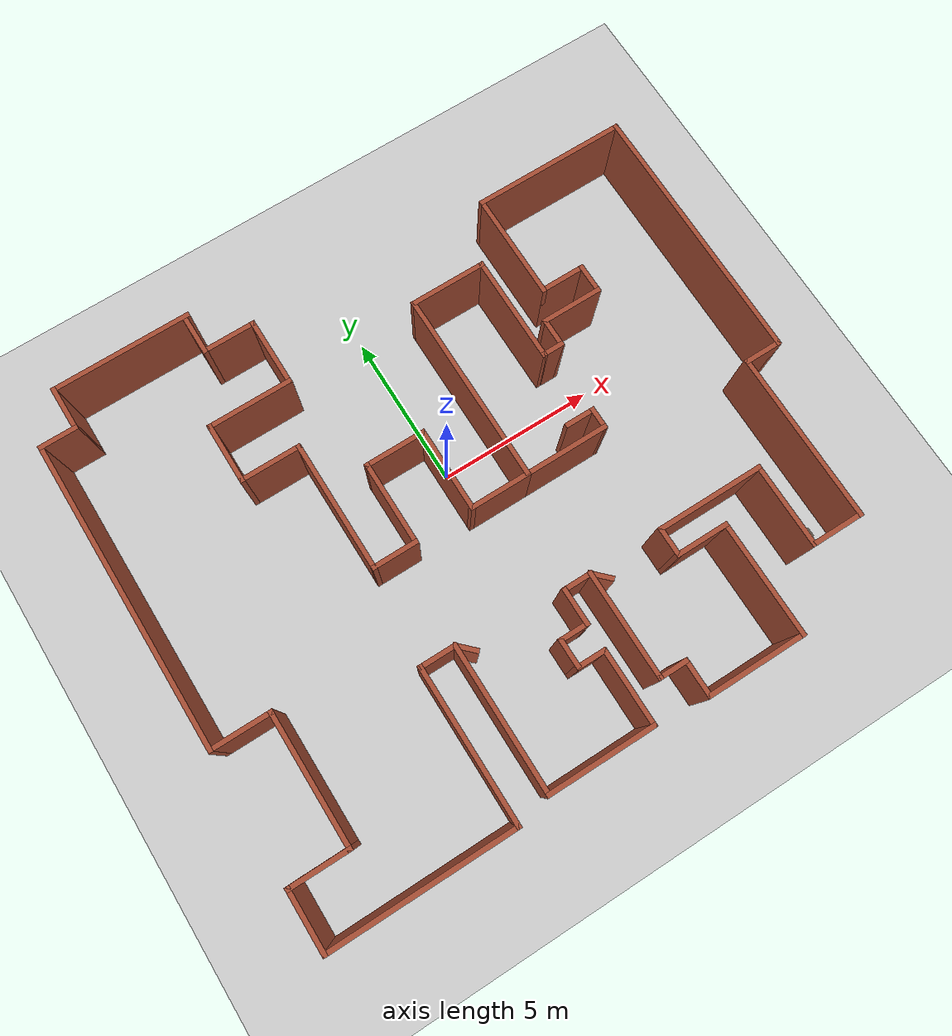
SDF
<sdf version="1.6">
 <world name="default">
  <model name="ground_plane">
   <static>1</static>
   <link name="link">
    <collision name="collision">
     <geometry><plane><normal>0 0 1</normal><size>100 100</size></plane></geometry>
     <surface>
      <contact><collide_bitmask>65535</collide_bitmask></contact>
      <friction><ode><mu>100</mu><mu2>50</mu2></ode></friction>
     </surface>
    </collision>
    <visual name="visual">
     <cast_shadows>0</cast_shadows>
     <geometry><plane><normal>0 0 1</normal><size>100 100</size></plane></geometry>
     <material>
      <script><uri>file://media/materials/scripts/gazebo.material</uri><name>Gazebo/Grey</name></script>
     </material>
    </visual>
   </link>
  </model>
  <model name="map_104">
   <pose>0.137097 -0.979717 0 0 -0 0</pose>
   <link name="Wall_14">
    <collision name="Wall_14_Collision">
     <geometry><box><size>1.5 0.15 2.5</size></box></geometry>
     <pose>0 0 1.25 0 -0 0</pose>
    </collision>
    <visual name="Wall_14_Visual">
     <pose>0 0 1.25 0 -0 0</pose>
     <geometry><box><size>1.5 0.15 2.5</size></box></geometry>
     <material>
      <script><uri>file://media/materials/scripts/gazebo.material</uri><name>Gazebo/Bricks</name></script>
      <ambient>1 1 1 1</ambient>
     </material>
     <meta><layer>0</layer></meta>
    </visual>
    <pose>-8.675 7.9 0 0 -0 -1.5708</pose>
   </link>
   <link name="Wall_15">
    <collision name="Wall_15_Collision">
     <geometry><box><size>1.25 0.15 2.5</size></box></geometry>
     <pose>0 0 1.25 0 -0 0</pose>
    </collision>
    <visual name="Wall_15_Visual">
     <pose>0 0 1.25 0 -0 0</pose>
     <geometry><box><size>1.25 0.15 2.5</size></box></geometry>
     <material>
      <script><uri>file://media/materials/scripts/gazebo.material</uri><name>Gazebo/Bricks</name></script>
      <ambient>1 1 1 1</ambient>
     </material>
     <meta><layer>0</layer></meta>
    </visual>
    <pose>-9.225 7.225 0 0 -0 3.14159</pose>
   </link>
   <link name="Wall_17">
    <collision name="Wall_17_Collision">
     <geometry><box><size>10 0.15 2.5</size></box></geometry>
     <pose>0 0 1.25 0 -0 0</pose>
    </collision>
    <visual name="Wall_17_Visual">
     <pose>0 0 1.25 0 -0 0</pose>
     <geometry><box><size>10 0.15 2.5</size></box></geometry>
     <material>
      <script><uri>file://media/materials/scripts/gazebo.material</uri><name>Gazebo/Bricks</name></script>
      <ambient>1 1 1 1</ambient>
     </material>
     <meta><layer>0</layer></meta>
    </visual>
    <pose>-9.775 2.3 0 0 -0 -1.5708</pose>
   </link>
   <link name="Wall_18">
    <collision name="Wall_18_Collision">
     <geometry><box><size>2 0.15 2.5</size></box></geometry>
     <pose>0 0 1.25 0 -0 0</pose>
    </collision>
    <visual name="Wall_18_Visual">
     <pose>0 0 1.25 0 -0 0</pose>
     <geometry><box><size>2 0.15 2.5</size></box></geometry>
     <material>
      <script><uri>file://media/materials/scripts/gazebo.material</uri><name>Gazebo/Bricks</name></script>
      <ambient>1 1 1 1</ambient>
     </material>
     <meta><layer>0</layer></meta>
    </visual>
    <pose>-8.85 -2.625 0 0 -0 0</pose>
   </link>
   <link name="Wall_19">
    <collision name="Wall_19_Collision">
     <geometry><box><size>4.25 0.15 2.5</size></box></geometry>
     <pose>0 0 1.25 0 -0 0</pose>
    </collision>
    <visual name="Wall_19_Visual">
     <pose>0 0 1.25 0 -0 0</pose>
     <geometry><box><size>4.25 0.15 2.5</size></box></geometry>
     <material>
      <script><uri>file://media/materials/scripts/gazebo.material</uri><name>Gazebo/Bricks</name></script>
      <ambient>1 1 1 1</ambient>
     </material>
     <meta><layer>0</layer></meta>
    </visual>
    <pose>-7.925 -4.675 0 0 -0 -1.5708</pose>
   </link>
   <link name="Wall_20">
    <collision name="Wall_20_Collision">
     <geometry><box><size>2 0.15 2.5</size></box></geometry>
     <pose>0 0 1.25 0 -0 0</pose>
    </collision>
    <visual name="Wall_20_Visual">
     <pose>0 0 1.25 0 -0 0</pose>
     <geometry><box><size>2 0.15 2.5</size></box></geometry>
     <material>
      <script><uri>file://media/materials/scripts/gazebo.material</uri><name>Gazebo/Bricks</name></script>
      <ambient>1 1 1 1</ambient>
     </material>
     <meta><layer>0</layer></meta>
    </visual>
    <pose>-8.85 -6.725 0 0 -0 3.14159</pose>
   </link>
   <link name="Wall_21">
    <collision name="Wall_21_Collision">
     <geometry><box><size>2 0.15 2.5</size></box></geometry>
     <pose>0 0 1.25 0 -0 0</pose>
    </collision>
    <visual name="Wall_21_Visual">
     <pose>0 0 1.25 0 -0 0</pose>
     <geometry><box><size>2 0.15 2.5</size></box></geometry>
     <material>
      <script><uri>file://media/materials/scripts/gazebo.material</uri><name>Gazebo/Bricks</name></script>
      <ambient>1 1 1 1</ambient>
     </material>
     <meta><layer>0</layer></meta>
    </visual>
    <pose>-9.775 -7.65 0 0 -0 -1.5708</pose>
   </link>
   <link name="Wall_22">
    <collision name="Wall_22_Collision">
     <geometry><box><size>6 0.15 2.5</size></box></geometry>
     <pose>0 0 1.25 0 -0 0</pose>
    </collision>
    <visual name="Wall_22_Visual">
     <pose>0 0 1.25 0 -0 0</pose>
     <geometry><box><size>6 0.15 2.5</size></box></geometry>
     <material>
      <script><uri>file://media/materials/scripts/gazebo.material</uri><name>Gazebo/Bricks</name></script>
      <ambient>1 1 1 1</ambient>
     </material>
     <meta><layer>0</layer></meta>
    </visual>
    <pose>-6.85 -8.575 0 0 -0 0</pose>
   </link>
   <link name="Wall_23">
    <collision name="Wall_23_Collision">
     <geometry><box><size>5 0.15 2.5</size></box></geometry>
     <pose>0 0 1.25 0 -0 0</pose>
    </collision>
    <visual name="Wall_23_Visual">
     <pose>0 0 1.25 0 -0 0</pose>
     <geometry><box><size>5 0.15 2.5</size></box></geometry>
     <material>
      <script><uri>file://media/materials/scripts/gazebo.material</uri><name>Gazebo/Bricks</name></script>
      <ambient>1 1 1 1</ambient>
     </material>
     <meta><layer>0</layer></meta>
    </visual>
    <pose>-3.925 -6.15 0 0 -0 1.5708</pose>
   </link>
   <link name="Wall_24">
    <collision name="Wall_24_Collision">
     <geometry><box><size>1.25 0.15 2.5</size></box></geometry>
     <pose>0 0 1.25 0 -0 0</pose>
    </collision>
    <visual name="Wall_24_Visual">
     <pose>0 0 1.25 0 -0 0</pose>
     <geometry><box><size>1.25 0.15 2.5</size></box></geometry>
     <material>
      <script><uri>file://media/materials/scripts/gazebo.material</uri><name>Gazebo/Bricks</name></script>
      <ambient>1 1 1 1</ambient>
     </material>
     <meta><layer>0</layer></meta>
    </visual>
    <pose>-3.375 -3.725 0 0 -0 0</pose>
   </link>
   <link name="Wall_25">
    <collision name="Wall_25_Collision">
     <geometry><box><size>4.75 0.15 2.5</size></box></geometry>
     <pose>0 0 1.25 0 -0 0</pose>
    </collision>
    <visual name="Wall_25_Visual">
     <pose>0 0 1.25 0 -0 0</pose>
     <geometry><box><size>4.75 0.15 2.5</size></box></geometry>
     <material>
      <script><uri>file://media/materials/scripts/gazebo.material</uri><name>Gazebo/Bricks</name></script>
      <ambient>1 1 1 1</ambient>
     </material>
     <meta><layer>0</layer></meta>
    </visual>
    <pose>-2.825 -6.025 0 0 -0 -1.5708</pose>
   </link>
   <link name="Wall_26">
    <collision name="Wall_26_Collision">
     <geometry><box><size>3.5 0.15 2.5</size></box></geometry>
     <pose>0 0 1.25 0 -0 0</pose>
    </collision>
    <visual name="Wall_26_Visual">
     <pose>0 0 1.25 0 -0 0</pose>
     <geometry><box><size>3.5 0.15 2.5</size></box></geometry>
     <material>
      <script><uri>file://media/materials/scripts/gazebo.material</uri><name>Gazebo/Bricks</name></script>
      <ambient>1 1 1 1</ambient>
     </material>
     <meta><layer>0</layer></meta>
    </visual>
    <pose>-1.15 -8.325 0 0 -0 0</pose>
   </link>
   <link name="Wall_27">
    <collision name="Wall_27_Collision">
     <geometry><box><size>2.5 0.15 2.5</size></box></geometry>
     <pose>0 0 1.25 0 -0 0</pose>
    </collision>
    <visual name="Wall_27_Visual">
     <pose>0 0 1.25 0 -0 0</pose>
     <geometry><box><size>2.5 0.15 2.5</size></box></geometry>
     <material>
      <script><uri>file://media/materials/scripts/gazebo.material</uri><name>Gazebo/Bricks</name></script>
      <ambient>1 1 1 1</ambient>
     </material>
     <meta><layer>0</layer></meta>
    </visual>
    <pose>0.525 -7.15 0 0 -0 1.5708</pose>
   </link>
   <link name="Wall_28">
    <collision name="Wall_28_Collision">
     <geometry><box><size>1 0.15 2.5</size></box></geometry>
     <pose>0 0 1.25 0 -0 0</pose>
    </collision>
    <visual name="Wall_28_Visual">
     <pose>0 0 1.25 0 -0 0</pose>
     <geometry><box><size>1 0.15 2.5</size></box></geometry>
     <material>
      <script><uri>file://media/materials/scripts/gazebo.material</uri><name>Gazebo/Bricks</name></script>
      <ambient>1 1 1 1</ambient>
     </material>
     <meta><layer>0</layer></meta>
    </visual>
    <pose>0.1 -5.975 0 0 -0 3.14159</pose>
   </link>
   <link name="Wall_29">
    <collision name="Wall_29_Collision">
     <geometry><box><size>1 0.15 2.5</size></box></geometry>
     <pose>0 0 1.25 0 -0 0</pose>
    </collision>
    <visual name="Wall_29_Visual">
     <pose>0 0 1.25 0 -0 0</pose>
     <geometry><box><size>1 0.15 2.5</size></box></geometry>
     <material>
      <script><uri>file://media/materials/scripts/gazebo.material</uri><name>Gazebo/Bricks</name></script>
      <ambient>1 1 1 1</ambient>
     </material>
     <meta><layer>0</layer></meta>
    </visual>
    <pose>-0.325 -5.55 0 0 -0 1.5708</pose>
   </link>
   <link name="Wall_30">
    <collision name="Wall_30_Collision">
     <geometry><box><size>1 0.15 2.5</size></box></geometry>
     <pose>0 0 1.25 0 -0 0</pose>
    </collision>
    <visual name="Wall_30_Visual">
     <pose>0 0 1.25 0 -0 0</pose>
     <geometry><box><size>1 0.15 2.5</size></box></geometry>
     <material>
      <script><uri>file://media/materials/scripts/gazebo.material</uri><name>Gazebo/Bricks</name></script>
      <ambient>1 1 1 1</ambient>
     </material>
     <meta><layer>0</layer></meta>
    </visual>
    <pose>0.1 -5.125 0 0 -0 0</pose>
   </link>
   <link name="Wall_31">
    <collision name="Wall_31_Collision">
     <geometry><box><size>1.25 0.15 2.5</size></box></geometry>
     <pose>0 0 1.25 0 -0 0</pose>
    </collision>
    <visual name="Wall_31_Visual">
     <pose>0 0 1.25 0 -0 0</pose>
     <geometry><box><size>1.25 0.15 2.5</size></box></geometry>
     <material>
      <script><uri>file://media/materials/scripts/gazebo.material</uri><name>Gazebo/Bricks</name></script>
      <ambient>1 1 1 1</ambient>
     </material>
     <meta><layer>0</layer></meta>
    </visual>
    <pose>0.525 -4.575 0 0 -0 1.5708</pose>
   </link>
   <link name="Wall_32">
    <collision name="Wall_32_Collision">
     <geometry><box><size>1 0.15 2.5</size></box></geometry>
     <pose>0 0 1.25 0 -0 0</pose>
    </collision>
    <visual name="Wall_32_Visual">
     <pose>0 0 1.25 0 -0 0</pose>
     <geometry><box><size>1 0.15 2.5</size></box></geometry>
     <material>
      <script><uri>file://media/materials/scripts/gazebo.material</uri><name>Gazebo/Bricks</name></script>
      <ambient>1 1 1 1</ambient>
     </material>
     <meta><layer>0</layer></meta>
    </visual>
    <pose>0.95 -4.025 0 0 -0 0</pose>
   </link>
   <link name="Wall_33">
    <collision name="Wall_33_Collision">
     <geometry><box><size>3.5 0.15 2.5</size></box></geometry>
     <pose>0 0 1.25 0 -0 0</pose>
    </collision>
    <visual name="Wall_33_Visual">
     <pose>0 0 1.25 0 -0 0</pose>
     <geometry><box><size>3.5 0.15 2.5</size></box></geometry>
     <material>
      <script><uri>file://media/materials/scripts/gazebo.material</uri><name>Gazebo/Bricks</name></script>
      <ambient>1 1 1 1</ambient>
     </material>
     <meta><layer>0</layer></meta>
    </visual>
    <pose>1.375 -5.7 0 0 -0 -1.5708</pose>
   </link>
   <link name="Wall_34">
    <collision name="Wall_34_Collision">
     <geometry><box><size>1 0.15 2.5</size></box></geometry>
     <pose>0 0 1.25 0 -0 0</pose>
    </collision>
    <visual name="Wall_34_Visual">
     <pose>0 0 1.25 0 -0 0</pose>
     <geometry><box><size>1 0.15 2.5</size></box></geometry>
     <material>
      <script><uri>file://media/materials/scripts/gazebo.material</uri><name>Gazebo/Bricks</name></script>
      <ambient>1 1 1 1</ambient>
     </material>
     <meta><layer>0</layer></meta>
    </visual>
    <pose>1.8 -7.375 0 0 -0 0</pose>
   </link>
   <link name="Wall_35">
    <collision name="Wall_35_Collision">
     <geometry><box><size>1.25 0.15 2.5</size></box></geometry>
     <pose>0 0 1.25 0 -0 0</pose>
    </collision>
    <visual name="Wall_35_Visual">
     <pose>0 0 1.25 0 -0 0</pose>
     <geometry><box><size>1.25 0.15 2.5</size></box></geometry>
     <material>
      <script><uri>file://media/materials/scripts/gazebo.material</uri><name>Gazebo/Bricks</name></script>
      <ambient>1 1 1 1</ambient>
     </material>
     <meta><layer>0</layer></meta>
    </visual>
    <pose>2.225 -7.925 0 0 -0 -1.5708</pose>
   </link>
   <link name="Wall_36">
    <collision name="Wall_36_Collision">
     <geometry><box><size>3.25 0.15 2.5</size></box></geometry>
     <pose>0 0 1.25 0 -0 0</pose>
    </collision>
    <visual name="Wall_36_Visual">
     <pose>0 0 1.25 0 -0 0</pose>
     <geometry><box><size>3.25 0.15 2.5</size></box></geometry>
     <material>
      <script><uri>file://media/materials/scripts/gazebo.material</uri><name>Gazebo/Bricks</name></script>
      <ambient>1 1 1 1</ambient>
     </material>
     <meta><layer>0</layer></meta>
    </visual>
    <pose>3.775 -8.475 0 0 -0 0</pose>
   </link>
   <link name="Wall_37">
    <collision name="Wall_37_Collision">
     <geometry><box><size>3.75 0.15 2.5</size></box></geometry>
     <pose>0 0 1.25 0 -0 0</pose>
    </collision>
    <visual name="Wall_37_Visual">
     <pose>0 0 1.25 0 -0 0</pose>
     <geometry><box><size>3.75 0.15 2.5</size></box></geometry>
     <material>
      <script><uri>file://media/materials/scripts/gazebo.material</uri><name>Gazebo/Bricks</name></script>
      <ambient>1 1 1 1</ambient>
     </material>
     <meta><layer>0</layer></meta>
    </visual>
    <pose>5.325 -6.675 0 0 -0 1.5708</pose>
   </link>
   <link name="Wall_38">
    <collision name="Wall_38_Collision">
     <geometry><box><size>1.75 0.15 2.5</size></box></geometry>
     <pose>0 0 1.25 0 -0 0</pose>
    </collision>
    <visual name="Wall_38_Visual">
     <pose>0 0 1.25 0 -0 0</pose>
     <geometry><box><size>1.75 0.15 2.5</size></box></geometry>
     <material>
      <script><uri>file://media/materials/scripts/gazebo.material</uri><name>Gazebo/Bricks</name></script>
      <ambient>1 1 1 1</ambient>
     </material>
     <meta><layer>0</layer></meta>
    </visual>
    <pose>4.525 -4.875 0 0 -0 3.14159</pose>
   </link>
   <link name="Wall_39">
    <collision name="Wall_39_Collision">
     <geometry><box><size>1 0.15 2.5</size></box></geometry>
     <pose>0 0 1.25 0 -0 0</pose>
    </collision>
    <visual name="Wall_39_Visual">
     <pose>0 0 1.25 0 -0 0</pose>
     <geometry><box><size>1 0.15 2.5</size></box></geometry>
     <material>
      <script><uri>file://media/materials/scripts/gazebo.material</uri><name>Gazebo/Bricks</name></script>
      <ambient>1 1 1 1</ambient>
     </material>
     <meta><layer>0</layer></meta>
    </visual>
    <pose>3.725 -4.45 0 0 -0 1.5708</pose>
   </link>
   <link name="Wall_40">
    <collision name="Wall_40_Collision">
     <geometry><box><size>3.5 0.15 2.5</size></box></geometry>
     <pose>0 0 1.25 0 -0 0</pose>
    </collision>
    <visual name="Wall_40_Visual">
     <pose>0 0 1.25 0 -0 0</pose>
     <geometry><box><size>3.5 0.15 2.5</size></box></geometry>
     <material>
      <script><uri>file://media/materials/scripts/gazebo.material</uri><name>Gazebo/Bricks</name></script>
      <ambient>1 1 1 1</ambient>
     </material>
     <meta><layer>0</layer></meta>
    </visual>
    <pose>5.4 -4.025 0 0 -0 0</pose>
   </link>
   <link name="Wall_41">
    <collision name="Wall_41_Collision">
     <geometry><box><size>2.75 0.15 2.5</size></box></geometry>
     <pose>0 0 1.25 0 -0 0</pose>
    </collision>
    <visual name="Wall_41_Visual">
     <pose>0 0 1.25 0 -0 0</pose>
     <geometry><box><size>2.75 0.15 2.5</size></box></geometry>
     <material>
      <script><uri>file://media/materials/scripts/gazebo.material</uri><name>Gazebo/Bricks</name></script>
      <ambient>1 1 1 1</ambient>
     </material>
     <meta><layer>0</layer></meta>
    </visual>
    <pose>7.075 -5.325 0 0 -0 -1.5708</pose>
   </link>
   <link name="Wall_42">
    <collision name="Wall_42_Collision">
     <geometry><box><size>1.75 0.15 2.5</size></box></geometry>
     <pose>0 0 1.25 0 -0 0</pose>
    </collision>
    <visual name="Wall_42_Visual">
     <pose>0 0 1.25 0 -0 0</pose>
     <geometry><box><size>1.75 0.15 2.5</size></box></geometry>
     <material>
      <script><uri>file://media/materials/scripts/gazebo.material</uri><name>Gazebo/Bricks</name></script>
      <ambient>1 1 1 1</ambient>
     </material>
     <meta><layer>0</layer></meta>
    </visual>
    <pose>7.875 -6.625 0 0 -0 0</pose>
   </link>
   <link name="Wall_43">
    <collision name="Wall_43_Collision">
     <geometry><box><size>5.5 0.15 2.5</size></box></geometry>
     <pose>0 0 1.25 0 -0 0</pose>
    </collision>
    <visual name="Wall_43_Visual">
     <pose>0 0 1.25 0 -0 0</pose>
     <geometry><box><size>5.5 0.15 2.5</size></box></geometry>
     <material>
      <script><uri>file://media/materials/scripts/gazebo.material</uri><name>Gazebo/Bricks</name></script>
      <ambient>1 1 1 1</ambient>
     </material>
     <meta><layer>0</layer></meta>
    </visual>
    <pose>8.675 -3.95 0 0 -0 1.5708</pose>
   </link>
   <link name="Wall_45">
    <collision name="Wall_45_Collision">
     <geometry><box><size>1.25 0.15 2.5</size></box></geometry>
     <pose>0 0 1.25 0 -0 0</pose>
    </collision>
    <visual name="Wall_45_Visual">
     <pose>0 0 1.25 0 -0 0</pose>
     <geometry><box><size>1.25 0.15 2.5</size></box></geometry>
     <material>
      <script><uri>file://media/materials/scripts/gazebo.material</uri><name>Gazebo/Bricks</name></script>
      <ambient>1 1 1 1</ambient>
     </material>
     <meta><layer>0</layer></meta>
    </visual>
    <pose>9.225 -1.275 0 0 -0 0</pose>
   </link>
   <link name="Wall_47">
    <collision name="Wall_47_Collision">
     <geometry><box><size>8.5 0.15 2.5</size></box></geometry>
     <pose>0 0 1.25 0 -0 0</pose>
    </collision>
    <visual name="Wall_47_Visual">
     <pose>0 0 1.25 0 -0 0</pose>
     <geometry><box><size>8.5 0.15 2.5</size></box></geometry>
     <material>
      <script><uri>file://media/materials/scripts/gazebo.material</uri><name>Gazebo/Bricks</name></script>
      <ambient>1 1 1 1</ambient>
     </material>
     <meta><layer>0</layer></meta>
    </visual>
    <pose>9.775 2.9 0 0 -0 1.5708</pose>
   </link>
   <link name="Wall_48">
    <collision name="Wall_48_Collision">
     <geometry><box><size>5 0.15 2.5</size></box></geometry>
     <pose>0 0 1.25 0 -0 0</pose>
    </collision>
    <visual name="Wall_48_Visual">
     <pose>0 0 1.25 0 -0 0</pose>
     <geometry><box><size>5 0.15 2.5</size></box></geometry>
     <material>
      <script><uri>file://media/materials/scripts/gazebo.material</uri><name>Gazebo/Bricks</name></script>
      <ambient>1 1 1 1</ambient>
     </material>
     <meta><layer>0</layer></meta>
    </visual>
    <pose>7.35 7.075 0 0 -0 3.14159</pose>
   </link>
   <link name="Wall_49">
    <collision name="Wall_49_Collision">
     <geometry><box><size>3.5 0.15 2.5</size></box></geometry>
     <pose>0 0 1.25 0 -0 0</pose>
    </collision>
    <visual name="Wall_49_Visual">
     <pose>0 0 1.25 0 -0 0</pose>
     <geometry><box><size>3.5 0.15 2.5</size></box></geometry>
     <material>
      <script><uri>file://media/materials/scripts/gazebo.material</uri><name>Gazebo/Bricks</name></script>
      <ambient>1 1 1 1</ambient>
     </material>
     <meta><layer>0</layer></meta>
    </visual>
    <pose>4.925 5.4 0 0 -0 -1.5708</pose>
   </link>
   <link name="Wall_50">
    <collision name="Wall_50_Collision">
     <geometry><box><size>1.5 0.15 2.5</size></box></geometry>
     <pose>0 0 1.25 0 -0 0</pose>
    </collision>
    <visual name="Wall_50_Visual">
     <pose>0 0 1.25 0 -0 0</pose>
     <geometry><box><size>1.5 0.15 2.5</size></box></geometry>
     <material>
      <script><uri>file://media/materials/scripts/gazebo.material</uri><name>Gazebo/Bricks</name></script>
      <ambient>1 1 1 1</ambient>
     </material>
     <meta><layer>0</layer></meta>
    </visual>
    <pose>5.6 3.725 0 0 -0 0</pose>
   </link>
   <link name="Wall_51">
    <collision name="Wall_51_Collision">
     <geometry><box><size>1 0.15 2.5</size></box></geometry>
     <pose>0 0 1.25 0 -0 0</pose>
    </collision>
    <visual name="Wall_51_Visual">
     <pose>0 0 1.25 0 -0 0</pose>
     <geometry><box><size>1 0.15 2.5</size></box></geometry>
     <material>
      <script><uri>file://media/materials/scripts/gazebo.material</uri><name>Gazebo/Bricks</name></script>
      <ambient>1 1 1 1</ambient>
     </material>
     <meta><layer>0</layer></meta>
    </visual>
    <pose>6.275 3.3 0 0 -0 -1.5708</pose>
   </link>
   <link name="Wall_52">
    <collision name="Wall_52_Collision">
     <geometry><box><size>2 0.15 2.5</size></box></geometry>
     <pose>0 0 1.25 0 -0 0</pose>
    </collision>
    <visual name="Wall_52_Visual">
     <pose>0 0 1.25 0 -0 0</pose>
     <geometry><box><size>2 0.15 2.5</size></box></geometry>
     <material>
      <script><uri>file://media/materials/scripts/gazebo.material</uri><name>Gazebo/Bricks</name></script>
      <ambient>1 1 1 1</ambient>
     </material>
     <meta><layer>0</layer></meta>
    </visual>
    <pose>5.35 2.875 0 0 -0 3.14159</pose>
   </link>
   <link name="Wall_62">
    <collision name="Wall_62_Collision">
     <geometry><box><size>2.5 0.15 2.5</size></box></geometry>
     <pose>0 0 1.25 0 -0 0</pose>
    </collision>
    <visual name="Wall_62_Visual">
     <pose>0 0 1.25 0 -0 0</pose>
     <geometry><box><size>2.5 0.15 2.5</size></box></geometry>
     <material>
      <script><uri>file://media/materials/scripts/gazebo.material</uri><name>Gazebo/Bricks</name></script>
      <ambient>1 1 1 1</ambient>
     </material>
     <meta><layer>0</layer></meta>
    </visual>
    <pose>2.65 5.375 0 0 -0 3.14159</pose>
   </link>
   <link name="Wall_63">
    <collision name="Wall_63_Collision">
     <geometry><box><size>6.25 0.15 2.5</size></box></geometry>
     <pose>0 0 1.25 0 -0 0</pose>
    </collision>
    <visual name="Wall_63_Visual">
     <pose>0 0 1.25 0 -0 0</pose>
     <geometry><box><size>6.25 0.15 2.5</size></box></geometry>
     <material>
      <script><uri>file://media/materials/scripts/gazebo.material</uri><name>Gazebo/Bricks</name></script>
      <ambient>1 1 1 1</ambient>
     </material>
     <meta><layer>0</layer></meta>
    </visual>
    <pose>1.475 2.325 0 0 -0 -1.5708</pose>
   </link>
   <link name="Wall_64">
    <collision name="Wall_64_Collision">
     <geometry><box><size>2.75 0.15 2.5</size></box></geometry>
     <pose>0 0 1.25 0 -0 0</pose>
    </collision>
    <visual name="Wall_64_Visual">
     <pose>0 0 1.25 0 -0 0</pose>
     <geometry><box><size>2.75 0.15 2.5</size></box></geometry>
     <material>
      <script><uri>file://media/materials/scripts/gazebo.material</uri><name>Gazebo/Bricks</name></script>
      <ambient>1 1 1 1</ambient>
     </material>
     <meta><layer>0</layer></meta>
    </visual>
    <pose>2.775 -0.725 0 0 -0 0</pose>
   </link>
   <link name="Wall_65">
    <collision name="Wall_65_Collision">
     <geometry><box><size>0.75 0.15 2.5</size></box></geometry>
     <pose>0 0 1.25 0 -0 0</pose>
    </collision>
    <visual name="Wall_65_Visual">
     <pose>0 0 1.25 0 -0 0</pose>
     <geometry><box><size>0.75 0.15 2.5</size></box></geometry>
     <material>
      <script><uri>file://media/materials/scripts/gazebo.material</uri><name>Gazebo/Bricks</name></script>
      <ambient>1 1 1 1</ambient>
     </material>
     <meta><layer>0</layer></meta>
    </visual>
    <pose>4.075 -0.425 0 0 -0 1.5708</pose>
   </link>
   <link name="Wall_66">
    <collision name="Wall_66_Collision">
     <geometry><box><size>1 0.15 2.5</size></box></geometry>
     <pose>0 0 1.25 0 -0 0</pose>
    </collision>
    <visual name="Wall_66_Visual">
     <pose>0 0 1.25 0 -0 0</pose>
     <geometry><box><size>1 0.15 2.5</size></box></geometry>
     <material>
      <script><uri>file://media/materials/scripts/gazebo.material</uri><name>Gazebo/Bricks</name></script>
      <ambient>1 1 1 1</ambient>
     </material>
     <meta><layer>0</layer></meta>
    </visual>
    <pose>3.65 -0.125 0 0 -0 3.14159</pose>
   </link>
   <link name="Wall_68">
    <collision name="Wall_68_Collision">
     <geometry><box><size>1 0.15 2.5</size></box></geometry>
     <pose>0 0 1.25 0 -0 0</pose>
    </collision>
    <visual name="Wall_68_Visual">
     <pose>0 0 1.25 0 -0 0</pose>
     <geometry><box><size>1 0.15 2.5</size></box></geometry>
     <material>
      <script><uri>file://media/materials/scripts/gazebo.material</uri><name>Gazebo/Bricks</name></script>
      <ambient>1 1 1 1</ambient>
     </material>
     <meta><layer>0</layer></meta>
    </visual>
    <pose>4.425 2.45 0 0 -0 -1.5708</pose>
   </link>
   <link name="Wall_70">
    <collision name="Wall_70_Collision">
     <geometry><box><size>3.5 0.15 2.5</size></box></geometry>
     <pose>0 0 1.25 0 -0 0</pose>
    </collision>
    <visual name="Wall_70_Visual">
     <pose>0 0 1.25 0 -0 0</pose>
     <geometry><box><size>3.5 0.15 2.5</size></box></geometry>
     <material>
      <script><uri>file://media/materials/scripts/gazebo.material</uri><name>Gazebo/Bricks</name></script>
      <ambient>1 1 1 1</ambient>
     </material>
     <meta><layer>0</layer></meta>
    </visual>
    <pose>3.825 3.7 0 0 -0 -1.5708</pose>
   </link>
   <link name="Wall_71">
    <collision name="Wall_71_Collision">
     <geometry><box><size>0.75 0.15 2.5</size></box></geometry>
     <pose>0 0 1.25 0 -0 0</pose>
    </collision>
    <visual name="Wall_71_Visual">
     <pose>0 0 1.25 0 -0 0</pose>
     <geometry><box><size>0.75 0.15 2.5</size></box></geometry>
     <material>
      <script><uri>file://media/materials/scripts/gazebo.material</uri><name>Gazebo/Bricks</name></script>
      <ambient>1 1 1 1</ambient>
     </material>
     <meta><layer>0</layer></meta>
    </visual>
    <pose>4.125 2.025 0 0 -0 0</pose>
   </link>
   <link name="Wall_73">
    <collision name="Wall_73_Collision">
     <geometry><box><size>0.75 0.15 2.5</size></box></geometry>
     <pose>0 0 1.25 0 -0 0</pose>
    </collision>
    <visual name="Wall_73_Visual">
     <pose>0 0 1.25 0 -0 0</pose>
     <geometry><box><size>0.75 0.15 2.5</size></box></geometry>
     <material>
      <script><uri>file://media/materials/scripts/gazebo.material</uri><name>Gazebo/Bricks</name></script>
      <ambient>1 1 1 1</ambient>
     </material>
     <meta><layer>0</layer></meta>
    </visual>
    <pose>-2.61287 -3.93713 0 0 -0 -0.785398</pose>
   </link>
   <link name="Wall_75">
    <collision name="Wall_75_Collision">
     <geometry><box><size>0.75 0.15 2.5</size></box></geometry>
     <pose>0 0 1.25 0 -0 0</pose>
    </collision>
    <visual name="Wall_75_Visual">
     <pose>0 0 1.25 0 -0 0</pose>
     <geometry><box><size>0.75 0.15 2.5</size></box></geometry>
     <material>
      <script><uri>file://media/materials/scripts/gazebo.material</uri><name>Gazebo/Bricks</name></script>
      <ambient>1 1 1 1</ambient>
     </material>
     <meta><layer>0</layer></meta>
    </visual>
    <pose>1.58713 -4.23713 0 0 -0 -0.785398</pose>
   </link>
   <link name="Wall_81">
    <collision name="Wall_81_Collision">
     <geometry><box><size>2 0.15 2.5</size></box></geometry>
     <pose>0 0 1.25 0 -0 0</pose>
    </collision>
    <visual name="Wall_81_Visual">
     <pose>0 0 1.25 0 -0 0</pose>
     <geometry><box><size>2 0.15 2.5</size></box></geometry>
     <material>
      <script><uri>file://media/materials/scripts/gazebo.material</uri><name>Gazebo/Bricks</name></script>
      <ambient>1 1 1 1</ambient>
     </material>
     <meta><layer>0</layer></meta>
    </visual>
    <pose>0.55 -0.725 0 0 -0 3.14159</pose>
   </link>
   <link name="Wall_82">
    <collision name="Wall_82_Collision">
     <geometry><box><size>2.75 0.15 2.5</size></box></geometry>
     <pose>0 0 1.25 0 -0 0</pose>
    </collision>
    <visual name="Wall_82_Visual">
     <pose>0 0 1.25 0 -0 0</pose>
     <geometry><box><size>2.75 0.15 2.5</size></box></geometry>
     <material>
      <script><uri>file://media/materials/scripts/gazebo.material</uri><name>Gazebo/Bricks</name></script>
      <ambient>1 1 1 1</ambient>
     </material>
     <meta><layer>0</layer></meta>
    </visual>
    <pose>-0.375 0.575 0 0 -0 1.5708</pose>
   </link>
   <link name="Wall_83">
    <collision name="Wall_83_Collision">
     <geometry><box><size>2 0.15 2.5</size></box></geometry>
     <pose>0 0 1.25 0 -0 0</pose>
    </collision>
    <visual name="Wall_83_Visual">
     <pose>0 0 1.25 0 -0 0</pose>
     <geometry><box><size>2 0.15 2.5</size></box></geometry>
     <material>
      <script><uri>file://media/materials/scripts/gazebo.material</uri><name>Gazebo/Bricks</name></script>
      <ambient>1 1 1 1</ambient>
     </material>
     <meta><layer>0</layer></meta>
    </visual>
    <pose>-1.3 1.875 0 0 -0 3.14159</pose>
   </link>
   <link name="Wall_84">
    <collision name="Wall_84_Collision">
     <geometry><box><size>2.75 0.15 2.5</size></box></geometry>
     <pose>0 0 1.25 0 -0 0</pose>
    </collision>
    <visual name="Wall_84_Visual">
     <pose>0 0 1.25 0 -0 0</pose>
     <geometry><box><size>2.75 0.15 2.5</size></box></geometry>
     <material>
      <script><uri>file://media/materials/scripts/gazebo.material</uri><name>Gazebo/Bricks</name></script>
      <ambient>1 1 1 1</ambient>
     </material>
     <meta><layer>0</layer></meta>
    </visual>
    <pose>-2.225 0.575 0 0 -0 -1.5708</pose>
   </link>
   <link name="Wall_85">
    <collision name="Wall_85_Collision">
     <geometry><box><size>1.5 0.15 2.5</size></box></geometry>
     <pose>0 0 1.25 0 -0 0</pose>
    </collision>
    <visual name="Wall_85_Visual">
     <pose>0 0 1.25 0 -0 0</pose>
     <geometry><box><size>1.5 0.15 2.5</size></box></geometry>
     <material>
      <script><uri>file://media/materials/scripts/gazebo.material</uri><name>Gazebo/Bricks</name></script>
      <ambient>1 1 1 1</ambient>
     </material>
     <meta><layer>0</layer></meta>
    </visual>
    <pose>-2.9 -0.725 0 0 -0 3.14159</pose>
   </link>
   <link name="Wall_86">
    <collision name="Wall_86_Collision">
     <geometry><box><size>4.25 0.15 2.5</size></box></geometry>
     <pose>0 0 1.25 0 -0 0</pose>
    </collision>
    <visual name="Wall_86_Visual">
     <pose>0 0 1.25 0 -0 0</pose>
     <geometry><box><size>4.25 0.15 2.5</size></box></geometry>
     <material>
      <script><uri>file://media/materials/scripts/gazebo.material</uri><name>Gazebo/Bricks</name></script>
      <ambient>1 1 1 1</ambient>
     </material>
     <meta><layer>0</layer></meta>
    </visual>
    <pose>-3.575 1.325 0 0 -0 1.5708</pose>
   </link>
   <link name="Wall_87">
    <collision name="Wall_87_Collision">
     <geometry><box><size>2 0.15 2.5</size></box></geometry>
     <pose>0 0 1.25 0 -0 0</pose>
    </collision>
    <visual name="Wall_87_Visual">
     <pose>0 0 1.25 0 -0 0</pose>
     <geometry><box><size>2 0.15 2.5</size></box></geometry>
     <material>
      <script><uri>file://media/materials/scripts/gazebo.material</uri><name>Gazebo/Bricks</name></script>
      <ambient>1 1 1 1</ambient>
     </material>
     <meta><layer>0</layer></meta>
    </visual>
    <pose>-4.5 3.375 0 0 -0 3.14159</pose>
   </link>
   <link name="Wall_88">
    <collision name="Wall_88_Collision">
     <geometry><box><size>2 0.15 2.5</size></box></geometry>
     <pose>0 0 1.25 0 -0 0</pose>
    </collision>
    <visual name="Wall_88_Visual">
     <pose>0 0 1.25 0 -0 0</pose>
     <geometry><box><size>2 0.15 2.5</size></box></geometry>
     <material>
      <script><uri>file://media/materials/scripts/gazebo.material</uri><name>Gazebo/Bricks</name></script>
      <ambient>1 1 1 1</ambient>
     </material>
     <meta><layer>0</layer></meta>
    </visual>
    <pose>-5.425 4.3 0 0 -0 1.5708</pose>
   </link>
   <link name="Wall_89">
    <collision name="Wall_89_Collision">
     <geometry><box><size>2.75 0.15 2.5</size></box></geometry>
     <pose>0 0 1.25 0 -0 0</pose>
    </collision>
    <visual name="Wall_89_Visual">
     <pose>0 0 1.25 0 -0 0</pose>
     <geometry><box><size>2.75 0.15 2.5</size></box></geometry>
     <material>
      <script><uri>file://media/materials/scripts/gazebo.material</uri><name>Gazebo/Bricks</name></script>
      <ambient>1 1 1 1</ambient>
     </material>
     <meta><layer>0</layer></meta>
    </visual>
    <pose>-4.125 5.225 0 0 -0 0</pose>
   </link>
   <link name="Wall_92">
    <collision name="Wall_92_Collision">
     <geometry><box><size>2.25 0.15 2.5</size></box></geometry>
     <pose>0 0 1.25 0 -0 0</pose>
    </collision>
    <visual name="Wall_92_Visual">
     <pose>0 0 1.25 0 -0 0</pose>
     <geometry><box><size>2.25 0.15 2.5</size></box></geometry>
     <material>
      <script><uri>file://media/materials/scripts/gazebo.material</uri><name>Gazebo/Bricks</name></script>
      <ambient>1 1 1 1</ambient>
     </material>
     <meta><layer>0</layer></meta>
    </visual>
    <pose>-2.825 6.275 0 0 -0 1.5708</pose>
   </link>
   <link name="Wall_93">
    <collision name="Wall_93_Collision">
     <geometry><box><size>1.75 0.15 2.5</size></box></geometry>
     <pose>0 0 1.25 0 -0 0</pose>
    </collision>
    <visual name="Wall_93_Visual">
     <pose>0 0 1.25 0 -0 0</pose>
     <geometry><box><size>1.75 0.15 2.5</size></box></geometry>
     <material>
      <script><uri>file://media/materials/scripts/gazebo.material</uri><name>Gazebo/Bricks</name></script>
      <ambient>1 1 1 1</ambient>
     </material>
     <meta><layer>0</layer></meta>
    </visual>
    <pose>-3.625 7.325 0 0 -0 3.14159</pose>
   </link>
   <link name="Wall_94">
    <collision name="Wall_94_Collision">
     <geometry><box><size>1.25 0.15 2.5</size></box></geometry>
     <pose>0 0 1.25 0 -0 0</pose>
    </collision>
    <visual name="Wall_94_Visual">
     <pose>0 0 1.25 0 -0 0</pose>
     <geometry><box><size>1.25 0.15 2.5</size></box></geometry>
     <material>
      <script><uri>file://media/materials/scripts/gazebo.material</uri><name>Gazebo/Bricks</name></script>
      <ambient>1 1 1 1</ambient>
     </material>
     <meta><layer>0</layer></meta>
    </visual>
    <pose>-4.425 7.875 0 0 -0 1.5708</pose>
   </link>
   <link name="Wall_99">
    <collision name="Wall_99_Collision">
     <geometry><box><size>4.5 0.15 2.5</size></box></geometry>
     <pose>0 0 1.25 0 -0 0</pose>
    </collision>
    <visual name="Wall_99_Visual">
     <pose>0 0 1.25 0 -0 0</pose>
     <geometry><box><size>4.5 0.15 2.5</size></box></geometry>
     <material>
      <script><uri>file://media/materials/scripts/gazebo.material</uri><name>Gazebo/Bricks</name></script>
      <ambient>1 1 1 1</ambient>
     </material>
     <meta><layer>0</layer></meta>
    </visual>
    <pose>-6.5 8.575 0 0 -0 0</pose>
   </link>
   <static>1</static>
  </model>
  <model name="6_Cube_StorageE">
   <link name="Wall_0">
    <pose>0 0 0.01 0 -0 0</pose>
    <inertial>
     <mass>1.6201</mass>
     <inertia><ixx>0.0119</ixx><iyy>0.0631</iyy><izz>0.0513</izz><ixy>0</ixy><ixz>0</ixz><iyz>0</iyz></inertia>
    </inertial>
    <collision name="Wall_0_Collision"><geometry><box><size>0.616 0.296 0.02</size></box></geometry></collision>
    <visual name="Wall_0_Visual">
     <geometry><box><size>0.616 0.296 0.02</size></box></geometry>
     <material>
      <script><uri>file://media/materials/scripts/gazebo.material</uri><name>Gazebo/Grey</name></script>
      <ambient>0.105882 0.0509804 0 1</ambient>
     </material>
    </visual>
   </link>
   <joint name="0_2" type="fixed">
    <pose>-0.308 0 0 0 -0 0</pose>
    <parent>Wall_2</parent>
    <child>Wall_0</child>
    <axis>
     <xyz>1 0 0</xyz>
     <use_parent_model_frame>0</use_parent_model_frame>
     <limit><lower>-1e+16</lower><upper>1e+16</upper></limit>
    </axis>
   </joint>
   <joint name="0_12" type="fixed">
    <parent>Wall_12</parent>
    <child>Wall_0</child>
    <axis>
     <xyz>0 0 1</xyz>
     <use_parent_model_frame>0</use_parent_model_frame>
     <limit><lower>-1e+16</lower><upper>1e+16</upper></limit>
    </axis>
   </joint>
   <joint name="0_4" type="fixed">
    <pose>0.308 0 0 0 -0 0</pose>
    <parent>Wall_4</parent>
    <child>Wall_0</child>
    <axis>
     <xyz>1 0 0</xyz>
     <use_parent_model_frame>0</use_parent_model_frame>
     <limit><lower>-1e+16</lower><upper>1e+16</upper></limit>
    </axis>
   </joint>
   <link name="Wall_10">
    <pose>0 0 0.61 0 -0 0</pose>
    <inertial>
     <mass>1.6201</mass>
     <inertia><ixx>0.0119</ixx><iyy>0.0631</iyy><izz>0.0513</izz><ixy>0</ixy><ixz>0</ixz><iyz>0</iyz></inertia>
    </inertial>
    <collision name="Wall_10_Collision"><geometry><box><size>0.616 0.296 0.02</size></box></geometry></collision>
    <visual name="Wall_10_Visual">
     <geometry><box><size>0.616 0.296 0.02</size></box></geometry>
     <material>
      <script><uri>file://media/materials/scripts/gazebo.material</uri><name>Gazebo/Grey</name></script>
      <ambient>0.105882 0.0509804 0 1</ambient>
     </material>
    </visual>
   </link>
   <joint name="10_2" type="fixed">
    <pose>-0.308 0 0 0 -0 0</pose>
    <parent>Wall_2</parent>
    <child>Wall_10</child>
    <axis>
     <xyz>1 0 0</xyz>
     <use_parent_model_frame>0</use_parent_model_frame>
     <limit><lower>-1e+16</lower><upper>1e+16</upper></limit>
    </axis>
   </joint>
   <joint name="10_12" type="fixed">
    <parent>Wall_12</parent>
    <child>Wall_10</child>
    <axis>
     <xyz>0 0 1</xyz>
     <use_parent_model_frame>0</use_parent_model_frame>
     <limit><lower>-1e+16</lower><upper>1e+16</upper></limit>
    </axis>
   </joint>
   <joint name="10_4" type="fixed">
    <pose>0.308 0 0 0 -0 0</pose>
    <parent>Wall_4</parent>
    <child>Wall_10</child>
    <axis>
     <xyz>1 0 0</xyz>
     <use_parent_model_frame>0</use_parent_model_frame>
     <limit><lower>-1e+16</lower><upper>1e+16</upper></limit>
    </axis>
   </joint>
   <link name="Wall_12">
    <pose>0 0 0.4575 0 -0 0</pose>
    <inertial>
     <mass>2.4065</mass>
     <inertia><ixx>0.0177</ixx><iyy>0.1855</iyy><izz>0.168</izz><ixy>0</ixy><ixz>0</ixz><iyz>0</iyz></inertia>
    </inertial>
    <collision name="Wall_12_Collision"><geometry><box><size>0.02 0.296 0.915</size></box></geometry></collision>
    <visual name="Wall_12_Visual">
     <geometry><box><size>0.02 0.296 0.915</size></box></geometry>
     <material>
      <script><uri>file://media/materials/scripts/gazebo.material</uri><name>Gazebo/Grey</name></script>
      <ambient>0.105882 0.0509804 0 1</ambient>
     </material>
    </visual>
   </link>
   <link name="Wall_2">
    <pose>-0.298 0 0.4575 0 -0 0</pose>
    <inertial>
     <mass>2.4065</mass>
     <inertia><ixx>0.0177</ixx><iyy>0.1855</iyy><izz>0.168</izz><ixy>0</ixy><ixz>0</ixz><iyz>0</iyz></inertia>
    </inertial>
    <collision name="Wall_2_Collision"><geometry><box><size>0.02 0.296 0.915</size></box></geometry></collision>
    <visual name="Wall_2_Visual">
     <geometry><box><size>0.02 0.296 0.915</size></box></geometry>
     <material>
      <script><uri>file://media/materials/scripts/gazebo.material</uri><name>Gazebo/Grey</name></script>
      <ambient>0.105882 0.0509804 0 1</ambient>
     </material>
    </visual>
   </link>
   <link name="Wall_4">
    <pose>0.298 0 0.4575 0 -0 0</pose>
    <inertial>
     <mass>2.4065</mass>
     <inertia><ixx>0.0177</ixx><iyy>0.1855</iyy><izz>0.168</izz><ixy>0</ixy><ixz>0</ixz><iyz>0</iyz></inertia>
    </inertial>
    <collision name="Wall_4_Collision"><geometry><box><size>0.02 0.296 0.915</size></box></geometry></collision>
    <visual name="Wall_4_Visual">
     <geometry><box><size>0.02 0.296 0.915</size></box></geometry>
     <material>
      <script><uri>file://media/materials/scripts/gazebo.material</uri><name>Gazebo/Grey</name></script>
      <ambient>0.105882 0.0509804 0 1</ambient>
     </material>
    </visual>
   </link>
   <link name="Wall_6">
    <pose>0 0 0.905 0 -0 0</pose>
    <inertial>
     <mass>1.6201</mass>
     <inertia><ixx>0.0119</ixx><iyy>0.0631</iyy><izz>0.0513</izz><ixy>0</ixy><ixz>0</ixz><iyz>0</iyz></inertia>
    </inertial>
    <collision name="Wall_6_Collision"><geometry><box><size>0.616 0.296 0.02</size></box></geometry></collision>
    <visual name="Wall_6_Visual">
     <geometry><box><size>0.616 0.296 0.02</size></box></geometry>
     <material>
      <script><uri>file://media/materials/scripts/gazebo.material</uri><name>Gazebo/Grey</name></script>
      <ambient>0.105882 0.0509804 0 1</ambient>
     </material>
    </visual>
   </link>
   <joint name="6_2" type="fixed">
    <pose>-0.308 0 0 0 -0 0</pose>
    <parent>Wall_2</parent>
    <child>Wall_6</child>
    <axis>
     <xyz>2 0 0</xyz>
     <use_parent_model_frame>0</use_parent_model_frame>
     <limit><lower>-1e+16</lower><upper>1e+16</upper></limit>
    </axis>
   </joint>
   <joint name="6_12" type="fixed">
    <parent>Wall_12</parent>
    <child>Wall_6</child>
    <axis>
     <xyz>0 0 1</xyz>
     <use_parent_model_frame>0</use_parent_model_frame>
     <limit><lower>-1e+16</lower><upper>1e+16</upper></limit>
    </axis>
   </joint>
   <joint name="6_4" type="fixed">
    <pose>0.308 0 0 0 -0 0</pose>
    <parent>Wall_4</parent>
    <child>Wall_6</child>
    <axis>
     <xyz>1 0 0</xyz>
     <use_parent_model_frame>0</use_parent_model_frame>
     <limit><lower>-1e+16</lower><upper>1e+16</upper></limit>
    </axis>
   </joint>
   <link name="Wall_8">
    <pose>0 0 0.305 0 -0 0</pose>
    <inertial>
     <mass>1.6201</mass>
     <inertia><ixx>0.0119</ixx><iyy>0.0631</iyy><izz>0.0513</izz><ixy>0</ixy><ixz>0</ixz><iyz>0</iyz></inertia>
    </inertial>
    <collision name="Wall_8_Collision"><geometry><box><size>0.616 0.296 0.02</size></box></geometry></collision>
    <visual name="Wall_8_Visual">
     <geometry><box><size>0.616 0.296 0.02</size></box></geometry>
     <material>
      <script><uri>file://media/materials/scripts/gazebo.material</uri><name>Gazebo/Grey</name></script>
      <ambient>0.105882 0.0509804 0 1</ambient>
     </material>
    </visual>
   </link>
   <joint name="8_2" type="fixed">
    <pose>-0.308 0 0 0 -0 0</pose>
    <parent>Wall_2</parent>
    <child>Wall_8</child>
    <axis>
     <xyz>1 0 0</xyz>
     <use_parent_model_frame>0</use_parent_model_frame>
     <limit><lower>-1e+16</lower><upper>1e+16</upper></limit>
    </axis>
   </joint>
   <joint name="8_12" type="fixed">
    <parent>Wall_12</parent>
    <child>Wall_8</child>
    <axis>
     <xyz>0 0 1</xyz>
     <use_parent_model_frame>0</use_parent_model_frame>
     <limit><lower>-1e+16</lower><upper>1e+16</upper></limit>
    </axis>
   </joint>
   <joint name="8_4" type="fixed">
    <pose>0.308 0 0 0 -0 0</pose>
    <parent>Wall_4</parent>
    <child>Wall_8</child>
    <axis>
     <xyz>1 0 0</xyz>
     <use_parent_model_frame>0</use_parent_model_frame>
     <limit><lower>-1e+16</lower><upper>1e+16</upper></limit>
    </axis>
   </joint>
   <static>1</static>
   <pose>7.68903 -7.26038 0 0 -0 0</pose>
  </model>
 </world>
</sdf>
